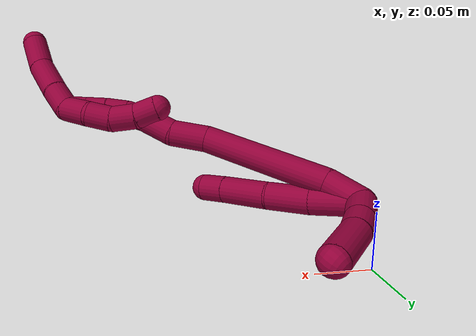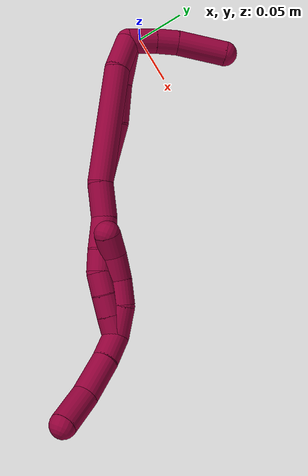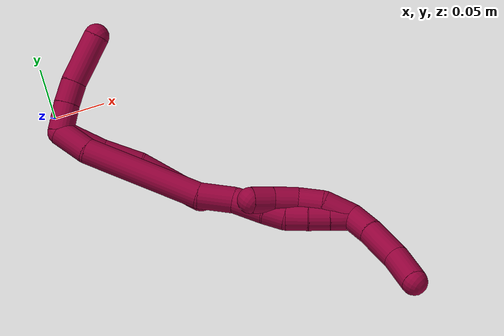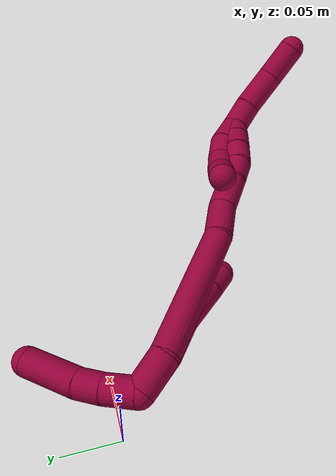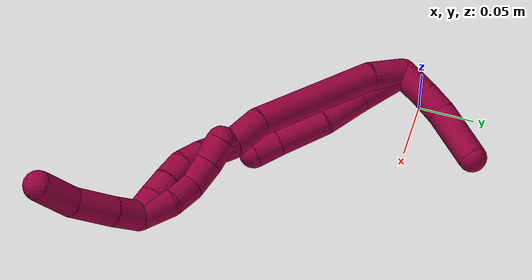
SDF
<sdf version="1.7">
 <world name="default">
  <model name="8">
   <static>0</static>
   <link name="8">
    <collision name="collision-cylinder-e_1_2_8">
     <pose>0.010074 -0.00645 0.01814 0.341648 0.48207 0.084758</pose>
     <geometry><cylinder><radius>0.0125</radius><length>0.043458</length></cylinder></geometry>
     <surface>
      <friction><ode><mu>1.16</mu><mu2>1.16</mu2><slip1>0</slip1><slip2>0</slip2></ode></friction>
      <contact><ode><kp>1e+06</kp><kd>1</kd><max_vel>0</max_vel><min_depth>0.001</min_depth></ode></contact>
     </surface>
    </collision>
    <visual name="visual-cylinder-e_1_2_8">
     <pose>0.010074 -0.00645 0.01814 0.341648 0.48207 0.084758</pose>
     <geometry><cylinder><radius>0.0125</radius><length>0.043458</length></cylinder></geometry>
     <material><ambient>0.584314 0 0.227451 1</ambient></material>
    </visual>
    <collision name="collision-cylinder-e_2_8_9">
     <pose>0.029605 -0.015478 0.053104 0.151988 0.507167 0.03946</pose>
     <geometry><cylinder><radius>0.0125</radius><length>0.038944</length></cylinder></geometry>
     <surface>
      <friction><ode><mu>1.16</mu><mu2>1.16</mu2><slip1>0</slip1><slip2>0</slip2></ode></friction>
      <contact><ode><kp>1e+06</kp><kd>1</kd><max_vel>0</max_vel><min_depth>0.001</min_depth></ode></contact>
     </surface>
    </collision>
    <visual name="visual-cylinder-e_2_8_9">
     <pose>0.029605 -0.015478 0.053104 0.151988 0.507167 0.03946</pose>
     <geometry><cylinder><radius>0.0125</radius><length>0.038944</length></cylinder></geometry>
     <material><ambient>0.584314 0 0.227451 1</ambient></material>
    </visual>
    <collision name="collision-cylinder-e_3_9_10">
     <pose>0.047313 -0.023992 0.089809 0.290206 0.378478 0.055962</pose>
     <geometry><cylinder><radius>0.0125</radius><length>0.044656</length></cylinder></geometry>
     <surface>
      <friction><ode><mu>1.16</mu><mu2>1.16</mu2><slip1>0</slip1><slip2>0</slip2></ode></friction>
      <contact><ode><kp>1e+06</kp><kd>1</kd><max_vel>0</max_vel><min_depth>0.001</min_depth></ode></contact>
     </surface>
    </collision>
    <visual name="visual-cylinder-e_3_9_10">
     <pose>0.047313 -0.023992 0.089809 0.290206 0.378478 0.055962</pose>
     <geometry><cylinder><radius>0.0125</radius><length>0.044656</length></cylinder></geometry>
     <material><ambient>0.584314 0 0.227451 1</ambient></material>
    </visual>
    <collision name="collision-cylinder-e_4_10_6">
     <pose>0.060193 -0.032917 0.119751 0.288716 0.415403 0.061251</pose>
     <geometry><cylinder><radius>0.0125</radius><length>0.022942</length></cylinder></geometry>
     <surface>
      <friction><ode><mu>1.16</mu><mu2>1.16</mu2><slip1>0</slip1><slip2>0</slip2></ode></friction>
      <contact><ode><kp>1e+06</kp><kd>1</kd><max_vel>0</max_vel><min_depth>0.001</min_depth></ode></contact>
     </surface>
    </collision>
    <visual name="visual-cylinder-e_4_10_6">
     <pose>0.060193 -0.032917 0.119751 0.288716 0.415403 0.061251</pose>
     <geometry><cylinder><radius>0.0125</radius><length>0.022942</length></cylinder></geometry>
     <material><ambient>0.584314 0 0.227451 1</ambient></material>
    </visual>
    <collision name="collision-cylinder-e_1_2_11">
     <pose>0.010156 0.007118 -0.006587 -2.3175 0.808495 -1.54939</pose>
     <geometry><cylinder><radius>0.0125</radius><length>0.028086</length></cylinder></geometry>
     <surface>
      <friction><ode><mu>1.16</mu><mu2>1.16</mu2><slip1>0</slip1><slip2>0</slip2></ode></friction>
      <contact><ode><kp>1e+06</kp><kd>1</kd><max_vel>0</max_vel><min_depth>0.001</min_depth></ode></contact>
     </surface>
    </collision>
    <visual name="visual-cylinder-e_1_2_11">
     <pose>0.010156 0.007118 -0.006587 -2.3175 0.808495 -1.54939</pose>
     <geometry><cylinder><radius>0.0125</radius><length>0.028086</length></cylinder></geometry>
     <material><ambient>0.584314 0 0.227451 1</ambient></material>
    </visual>
    <collision name="collision-cylinder-e_2_11_12">
     <pose>0.028713 0.020146 -0.017368 -2.18791 0.858903 -1.45059</pose>
     <geometry><cylinder><radius>0.0125</radius><length>0.02219</length></cylinder></geometry>
     <surface>
      <friction><ode><mu>1.16</mu><mu2>1.16</mu2><slip1>0</slip1><slip2>0</slip2></ode></friction>
      <contact><ode><kp>1e+06</kp><kd>1</kd><max_vel>0</max_vel><min_depth>0.001</min_depth></ode></contact>
     </surface>
    </collision>
    <visual name="visual-cylinder-e_2_11_12">
     <pose>0.028713 0.020146 -0.017368 -2.18791 0.858903 -1.45059</pose>
     <geometry><cylinder><radius>0.0125</radius><length>0.02219</length></cylinder></geometry>
     <material><ambient>0.584314 0 0.227451 1</ambient></material>
    </visual>
    <collision name="collision-cylinder-e_3_12_5">
     <pose>0.056971 0.039914 -0.027201 -1.95723 0.925147 -1.27576</pose>
     <geometry><cylinder><radius>0.0125</radius><length>0.049725</length></cylinder></geometry>
     <surface>
      <friction><ode><mu>1.16</mu><mu2>1.16</mu2><slip1>0</slip1><slip2>0</slip2></ode></friction>
      <contact><ode><kp>1e+06</kp><kd>1</kd><max_vel>0</max_vel><min_depth>0.001</min_depth></ode></contact>
     </surface>
    </collision>
    <visual name="visual-cylinder-e_3_12_5">
     <pose>0.056971 0.039914 -0.027201 -1.95723 0.925147 -1.27576</pose>
     <geometry><cylinder><radius>0.0125</radius><length>0.049725</length></cylinder></geometry>
     <material><ambient>0.584314 0 0.227451 1</ambient></material>
    </visual>
    <collision name="collision-cylinder-e_1_2_13">
     <pose>0.001447 -0.000238 0.016762 0.01418 0.086115 0.000611</pose>
     <geometry><cylinder><radius>0.0125</radius><length>0.033653</length></cylinder></geometry>
     <surface>
      <friction><ode><mu>1.16</mu><mu2>1.16</mu2><slip1>0</slip1><slip2>0</slip2></ode></friction>
      <contact><ode><kp>1e+06</kp><kd>1</kd><max_vel>0</max_vel><min_depth>0.001</min_depth></ode></contact>
     </surface>
    </collision>
    <visual name="visual-cylinder-e_1_2_13">
     <pose>0.001447 -0.000238 0.016762 0.01418 0.086115 0.000611</pose>
     <geometry><cylinder><radius>0.0125</radius><length>0.033653</length></cylinder></geometry>
     <material><ambient>0.584314 0 0.227451 1</ambient></material>
    </visual>
    <collision name="collision-cylinder-e_2_13_14">
     <pose>0.021406 0.001329 0.089291 -0.032342 0.320342 -0.005225</pose>
     <geometry><cylinder><radius>0.0125</radius><length>0.117571</length></cylinder></geometry>
     <surface>
      <friction><ode><mu>1.16</mu><mu2>1.16</mu2><slip1>0</slip1><slip2>0</slip2></ode></friction>
      <contact><ode><kp>1e+06</kp><kd>1</kd><max_vel>0</max_vel><min_depth>0.001</min_depth></ode></contact>
     </surface>
    </collision>
    <visual name="visual-cylinder-e_2_13_14">
     <pose>0.021406 0.001329 0.089291 -0.032342 0.320342 -0.005225</pose>
     <geometry><cylinder><radius>0.0125</radius><length>0.117571</length></cylinder></geometry>
     <material><ambient>0.584314 0 0.227451 1</ambient></material>
    </visual>
    <collision name="collision-cylinder-e_3_14_15">
     <pose>0.049266 0.005123 0.159543 -0.136492 0.568885 -0.039963</pose>
     <geometry><cylinder><radius>0.0125</radius><length>0.034712</length></cylinder></geometry>
     <surface>
      <friction><ode><mu>1.16</mu><mu2>1.16</mu2><slip1>0</slip1><slip2>0</slip2></ode></friction>
      <contact><ode><kp>1e+06</kp><kd>1</kd><max_vel>0</max_vel><min_depth>0.001</min_depth></ode></contact>
     </surface>
    </collision>
    <visual name="visual-cylinder-e_3_14_15">
     <pose>0.049266 0.005123 0.159543 -0.136492 0.568885 -0.039963</pose>
     <geometry><cylinder><radius>0.0125</radius><length>0.034712</length></cylinder></geometry>
     <material><ambient>0.584314 0 0.227451 1</ambient></material>
    </visual>
    <collision name="collision-cylinder-e_4_15_16">
     <pose>0.062703 0.009657 0.189407 -0.163968 0.256451 -0.021188</pose>
     <geometry><cylinder><radius>0.0125</radius><length>0.032229</length></cylinder></geometry>
     <surface>
      <friction><ode><mu>1.16</mu><mu2>1.16</mu2><slip1>0</slip1><slip2>0</slip2></ode></friction>
      <contact><ode><kp>1e+06</kp><kd>1</kd><max_vel>0</max_vel><min_depth>0.001</min_depth></ode></contact>
     </surface>
    </collision>
    <visual name="visual-cylinder-e_4_15_16">
     <pose>0.062703 0.009657 0.189407 -0.163968 0.256451 -0.021188</pose>
     <geometry><cylinder><radius>0.0125</radius><length>0.032229</length></cylinder></geometry>
     <material><ambient>0.584314 0 0.227451 1</ambient></material>
    </visual>
    <collision name="collision-cylinder-e_5_16_17">
     <pose>0.07064 0.013018 0.2141 -0.087529 0.390558 -0.017324</pose>
     <geometry><cylinder><radius>0.0125</radius><length>0.020224</length></cylinder></geometry>
     <surface>
      <friction><ode><mu>1.16</mu><mu2>1.16</mu2><slip1>0</slip1><slip2>0</slip2></ode></friction>
      <contact><ode><kp>1e+06</kp><kd>1</kd><max_vel>0</max_vel><min_depth>0.001</min_depth></ode></contact>
     </surface>
    </collision>
    <visual name="visual-cylinder-e_5_16_17">
     <pose>0.07064 0.013018 0.2141 -0.087529 0.390558 -0.017324</pose>
     <geometry><cylinder><radius>0.0125</radius><length>0.020224</length></cylinder></geometry>
     <material><ambient>0.584314 0 0.227451 1</ambient></material>
    </visual>
    <collision name="collision-cylinder-e_6_17_18">
     <pose>0.080979 0.01576 0.231536 -0.232639 0.66093 -0.080124</pose>
     <geometry><cylinder><radius>0.0125</radius><length>0.021144</length></cylinder></geometry>
     <surface>
      <friction><ode><mu>1.16</mu><mu2>1.16</mu2><slip1>0</slip1><slip2>0</slip2></ode></friction>
      <contact><ode><kp>1e+06</kp><kd>1</kd><max_vel>0</max_vel><min_depth>0.001</min_depth></ode></contact>
     </surface>
    </collision>
    <visual name="visual-cylinder-e_6_17_18">
     <pose>0.080979 0.01576 0.231536 -0.232639 0.66093 -0.080124</pose>
     <geometry><cylinder><radius>0.0125</radius><length>0.021144</length></cylinder></geometry>
     <material><ambient>0.584314 0 0.227451 1</ambient></material>
    </visual>
    <collision name="collision-cylinder-e_7_18_19">
     <pose>0.094091 0.018957 0.247048 -0.17059 0.723344 -0.064671</pose>
     <geometry><cylinder><radius>0.0125</radius><length>0.020011</length></cylinder></geometry>
     <surface>
      <friction><ode><mu>1.16</mu><mu2>1.16</mu2><slip1>0</slip1><slip2>0</slip2></ode></friction>
      <contact><ode><kp>1e+06</kp><kd>1</kd><max_vel>0</max_vel><min_depth>0.001</min_depth></ode></contact>
     </surface>
    </collision>
    <visual name="visual-cylinder-e_7_18_19">
     <pose>0.094091 0.018957 0.247048 -0.17059 0.723344 -0.064671</pose>
     <geometry><cylinder><radius>0.0125</radius><length>0.020011</length></cylinder></geometry>
     <material><ambient>0.584314 0 0.227451 1</ambient></material>
    </visual>
    <collision name="collision-cylinder-e_8_19_1">
     <pose>0.107645 0.021664 0.261823 -0.191817 0.744558 -0.075098</pose>
     <geometry><cylinder><radius>0.0125</radius><length>0.020457</length></cylinder></geometry>
     <surface>
      <friction><ode><mu>1.16</mu><mu2>1.16</mu2><slip1>0</slip1><slip2>0</slip2></ode></friction>
      <contact><ode><kp>1e+06</kp><kd>1</kd><max_vel>0</max_vel><min_depth>0.001</min_depth></ode></contact>
     </surface>
    </collision>
    <visual name="visual-cylinder-e_8_19_1">
     <pose>0.107645 0.021664 0.261823 -0.191817 0.744558 -0.075098</pose>
     <geometry><cylinder><radius>0.0125</radius><length>0.020457</length></cylinder></geometry>
     <material><ambient>0.584314 0 0.227451 1</ambient></material>
    </visual>
    <collision name="collision-cylinder-e_1_1_20">
     <pose>0.112463 0.02562 0.282104 -0.193072 -0.1595 0.015478</pose>
     <geometry><cylinder><radius>0.0125</radius><length>0.02662</length></cylinder></geometry>
     <surface>
      <friction><ode><mu>1.16</mu><mu2>1.16</mu2><slip1>0</slip1><slip2>0</slip2></ode></friction>
      <contact><ode><kp>1e+06</kp><kd>1</kd><max_vel>0</max_vel><min_depth>0.001</min_depth></ode></contact>
     </surface>
    </collision>
    <visual name="visual-cylinder-e_1_1_20">
     <pose>0.112463 0.02562 0.282104 -0.193072 -0.1595 0.015478</pose>
     <geometry><cylinder><radius>0.0125</radius><length>0.02662</length></cylinder></geometry>
     <material><ambient>0.584314 0 0.227451 1</ambient></material>
    </visual>
    <collision name="collision-cylinder-e_2_20_21">
     <pose>0.106113 0.030254 0.313518 -0.113581 -0.223442 0.012756</pose>
     <geometry><cylinder><radius>0.0125</radius><length>0.038226</length></cylinder></geometry>
     <surface>
      <friction><ode><mu>1.16</mu><mu2>1.16</mu2><slip1>0</slip1><slip2>0</slip2></ode></friction>
      <contact><ode><kp>1e+06</kp><kd>1</kd><max_vel>0</max_vel><min_depth>0.001</min_depth></ode></contact>
     </surface>
    </collision>
    <visual name="visual-cylinder-e_2_20_21">
     <pose>0.106113 0.030254 0.313518 -0.113581 -0.223442 0.012756</pose>
     <geometry><cylinder><radius>0.0125</radius><length>0.038226</length></cylinder></geometry>
     <material><ambient>0.584314 0 0.227451 1</ambient></material>
    </visual>
    <collision name="collision-cylinder-e_3_21_4">
     <pose>0.094994 0.035791 0.347842 -0.213413 -0.40245 0.043692</pose>
     <geometry><cylinder><radius>0.0125</radius><length>0.035154</length></cylinder></geometry>
     <surface>
      <friction><ode><mu>1.16</mu><mu2>1.16</mu2><slip1>0</slip1><slip2>0</slip2></ode></friction>
      <contact><ode><kp>1e+06</kp><kd>1</kd><max_vel>0</max_vel><min_depth>0.001</min_depth></ode></contact>
     </surface>
    </collision>
    <visual name="visual-cylinder-e_3_21_4">
     <pose>0.094994 0.035791 0.347842 -0.213413 -0.40245 0.043692</pose>
     <geometry><cylinder><radius>0.0125</radius><length>0.035154</length></cylinder></geometry>
     <material><ambient>0.584314 0 0.227451 1</ambient></material>
    </visual>
    <collision name="collision-cylinder-e_1_1_22">
     <pose>0.109573 0.024584 0.255664 -3.03233 -0.351943 2.54487</pose>
     <geometry><cylinder><radius>0.0125</radius><length>0.029028</length></cylinder></geometry>
     <surface>
      <friction><ode><mu>1.16</mu><mu2>1.16</mu2><slip1>0</slip1><slip2>0</slip2></ode></friction>
      <contact><ode><kp>1e+06</kp><kd>1</kd><max_vel>0</max_vel><min_depth>0.001</min_depth></ode></contact>
     </surface>
    </collision>
    <visual name="visual-cylinder-e_1_1_22">
     <pose>0.109573 0.024584 0.255664 -3.03233 -0.351943 2.54487</pose>
     <geometry><cylinder><radius>0.0125</radius><length>0.029028</length></cylinder></geometry>
     <material><ambient>0.584314 0 0.227451 1</ambient></material>
    </visual>
    <collision name="collision-cylinder-e_2_22_23">
     <pose>0.098317 0.024202 0.231847 2.96174 -0.539507 -2.51112</pose>
     <geometry><cylinder><radius>0.0125</radius><length>0.024343</length></cylinder></geometry>
     <surface>
      <friction><ode><mu>1.16</mu><mu2>1.16</mu2><slip1>0</slip1><slip2>0</slip2></ode></friction>
      <contact><ode><kp>1e+06</kp><kd>1</kd><max_vel>0</max_vel><min_depth>0.001</min_depth></ode></contact>
     </surface>
    </collision>
    <visual name="visual-cylinder-e_2_22_23">
     <pose>0.098317 0.024202 0.231847 2.96174 -0.539507 -2.51112</pose>
     <geometry><cylinder><radius>0.0125</radius><length>0.024343</length></cylinder></geometry>
     <material><ambient>0.584314 0 0.227451 1</ambient></material>
    </visual>
    <collision name="collision-cylinder-e_3_23_24">
     <pose>0.083023 0.02275 0.213135 -3.09227 -0.819346 3.02812</pose>
     <geometry><cylinder><radius>0.0125</radius><length>0.024747</length></cylinder></geometry>
     <surface>
      <friction><ode><mu>1.16</mu><mu2>1.16</mu2><slip1>0</slip1><slip2>0</slip2></ode></friction>
      <contact><ode><kp>1e+06</kp><kd>1</kd><max_vel>0</max_vel><min_depth>0.001</min_depth></ode></contact>
     </surface>
    </collision>
    <visual name="visual-cylinder-e_3_23_24">
     <pose>0.083023 0.02275 0.213135 -3.09227 -0.819346 3.02812</pose>
     <geometry><cylinder><radius>0.0125</radius><length>0.024747</length></cylinder></geometry>
     <material><ambient>0.584314 0 0.227451 1</ambient></material>
    </visual>
    <collision name="collision-cylinder-e_4_24_3">
     <pose>0.064882 0.025086 0.198936 -2.82007 -0.982257 2.55283</pose>
     <geometry><cylinder><radius>0.0125</radius><length>0.021882</length></cylinder></geometry>
     <surface>
      <friction><ode><mu>1.16</mu><mu2>1.16</mu2><slip1>0</slip1><slip2>0</slip2></ode></friction>
      <contact><ode><kp>1e+06</kp><kd>1</kd><max_vel>0</max_vel><min_depth>0.001</min_depth></ode></contact>
     </surface>
    </collision>
    <visual name="visual-cylinder-e_4_24_3">
     <pose>0.064882 0.025086 0.198936 -2.82007 -0.982257 2.55283</pose>
     <geometry><cylinder><radius>0.0125</radius><length>0.021882</length></cylinder></geometry>
     <material><ambient>0.584314 0 0.227451 1</ambient></material>
    </visual>
    <collision name="collision-sphere-3">
     <pose>0.055782 0.027005 0.193173 0 -0 0</pose>
     <geometry><sphere><radius>0.0125</radius></sphere></geometry>
     <surface>
      <friction><ode><mu>1.16</mu><mu2>1.16</mu2><slip1>0</slip1><slip2>0</slip2></ode></friction>
      <contact><ode><kp>1e+06</kp><kd>1</kd><max_vel>0</max_vel><min_depth>0.001</min_depth></ode></contact>
     </surface>
    </collision>
    <visual name="visual-sphere-3">
     <pose>0.055782 0.027005 0.193173 0 -0 0</pose>
     <geometry><sphere><radius>0.0125</radius></sphere></geometry>
     <material><ambient>0.584314 0 0.227451 1</ambient></material>
    </visual>
    <collision name="collision-sphere-24">
     <pose>0.073982 0.023167 0.204698 0 -0 0</pose>
     <geometry><sphere><radius>0.0125</radius></sphere></geometry>
     <surface>
      <friction><ode><mu>1.16</mu><mu2>1.16</mu2><slip1>0</slip1><slip2>0</slip2></ode></friction>
      <contact><ode><kp>1e+06</kp><kd>1</kd><max_vel>0</max_vel><min_depth>0.001</min_depth></ode></contact>
     </surface>
    </collision>
    <visual name="visual-sphere-24">
     <pose>0.073982 0.023167 0.204698 0 -0 0</pose>
     <geometry><sphere><radius>0.0125</radius></sphere></geometry>
     <material><ambient>0.584314 0 0.227451 1</ambient></material>
    </visual>
    <collision name="collision-sphere-23">
     <pose>0.092065 0.022334 0.221573 0 -0 0</pose>
     <geometry><sphere><radius>0.0125</radius></sphere></geometry>
     <surface>
      <friction><ode><mu>1.16</mu><mu2>1.16</mu2><slip1>0</slip1><slip2>0</slip2></ode></friction>
      <contact><ode><kp>1e+06</kp><kd>1</kd><max_vel>0</max_vel><min_depth>0.001</min_depth></ode></contact>
     </surface>
    </collision>
    <visual name="visual-sphere-23">
     <pose>0.092065 0.022334 0.221573 0 -0 0</pose>
     <geometry><sphere><radius>0.0125</radius></sphere></geometry>
     <material><ambient>0.584314 0 0.227451 1</ambient></material>
    </visual>
    <collision name="collision-sphere-22">
     <pose>0.10457 0.02607 0.242121 0 -0 0</pose>
     <geometry><sphere><radius>0.0125</radius></sphere></geometry>
     <surface>
      <friction><ode><mu>1.16</mu><mu2>1.16</mu2><slip1>0</slip1><slip2>0</slip2></ode></friction>
      <contact><ode><kp>1e+06</kp><kd>1</kd><max_vel>0</max_vel><min_depth>0.001</min_depth></ode></contact>
     </surface>
    </collision>
    <visual name="visual-sphere-22">
     <pose>0.10457 0.02607 0.242121 0 -0 0</pose>
     <geometry><sphere><radius>0.0125</radius></sphere></geometry>
     <material><ambient>0.584314 0 0.227451 1</ambient></material>
    </visual>
    <collision name="collision-sphere-4">
     <pose>0.088109 0.039217 0.363648 0 -0 0</pose>
     <geometry><sphere><radius>0.0125</radius></sphere></geometry>
     <surface>
      <friction><ode><mu>1.16</mu><mu2>1.16</mu2><slip1>0</slip1><slip2>0</slip2></ode></friction>
      <contact><ode><kp>1e+06</kp><kd>1</kd><max_vel>0</max_vel><min_depth>0.001</min_depth></ode></contact>
     </surface>
    </collision>
    <visual name="visual-sphere-4">
     <pose>0.088109 0.039217 0.363648 0 -0 0</pose>
     <geometry><sphere><radius>0.0125</radius></sphere></geometry>
     <material><ambient>0.584314 0 0.227451 1</ambient></material>
    </visual>
    <collision name="collision-sphere-21">
     <pose>0.101878 0.032366 0.332036 0 -0 0</pose>
     <geometry><sphere><radius>0.0125</radius></sphere></geometry>
     <surface>
      <friction><ode><mu>1.16</mu><mu2>1.16</mu2><slip1>0</slip1><slip2>0</slip2></ode></friction>
      <contact><ode><kp>1e+06</kp><kd>1</kd><max_vel>0</max_vel><min_depth>0.001</min_depth></ode></contact>
     </surface>
    </collision>
    <visual name="visual-sphere-21">
     <pose>0.101878 0.032366 0.332036 0 -0 0</pose>
     <geometry><sphere><radius>0.0125</radius></sphere></geometry>
     <material><ambient>0.584314 0 0.227451 1</ambient></material>
    </visual>
    <collision name="collision-sphere-20">
     <pose>0.110349 0.028141 0.295001 0 -0 0</pose>
     <geometry><sphere><radius>0.0125</radius></sphere></geometry>
     <surface>
      <friction><ode><mu>1.16</mu><mu2>1.16</mu2><slip1>0</slip1><slip2>0</slip2></ode></friction>
      <contact><ode><kp>1e+06</kp><kd>1</kd><max_vel>0</max_vel><min_depth>0.001</min_depth></ode></contact>
     </surface>
    </collision>
    <visual name="visual-sphere-20">
     <pose>0.110349 0.028141 0.295001 0 -0 0</pose>
     <geometry><sphere><radius>0.0125</radius></sphere></geometry>
     <material><ambient>0.584314 0 0.227451 1</ambient></material>
    </visual>
    <collision name="collision-sphere-11">
     <pose>0.020313 0.014235 -0.013174 0 -0 0</pose>
     <geometry><sphere><radius>0.0125</radius></sphere></geometry>
     <surface>
      <friction><ode><mu>1.16</mu><mu2>1.16</mu2><slip1>0</slip1><slip2>0</slip2></ode></friction>
      <contact><ode><kp>1e+06</kp><kd>1</kd><max_vel>0</max_vel><min_depth>0.001</min_depth></ode></contact>
     </surface>
    </collision>
    <visual name="visual-sphere-11">
     <pose>0.020313 0.014235 -0.013174 0 -0 0</pose>
     <geometry><sphere><radius>0.0125</radius></sphere></geometry>
     <material><ambient>0.584314 0 0.227451 1</ambient></material>
    </visual>
    <collision name="collision-sphere-6">
     <pose>0.064822 -0.035905 0.129812 0 -0 0</pose>
     <geometry><sphere><radius>0.0125</radius></sphere></geometry>
     <surface>
      <friction><ode><mu>1.16</mu><mu2>1.16</mu2><slip1>0</slip1><slip2>0</slip2></ode></friction>
      <contact><ode><kp>1e+06</kp><kd>1</kd><max_vel>0</max_vel><min_depth>0.001</min_depth></ode></contact>
     </surface>
    </collision>
    <visual name="visual-sphere-6">
     <pose>0.064822 -0.035905 0.129812 0 -0 0</pose>
     <geometry><sphere><radius>0.0125</radius></sphere></geometry>
     <material><ambient>0.584314 0 0.227451 1</ambient></material>
    </visual>
    <collision name="collision-sphere-10">
     <pose>0.055564 -0.029929 0.10969 0 -0 0</pose>
     <geometry><sphere><radius>0.0125</radius></sphere></geometry>
     <surface>
      <friction><ode><mu>1.16</mu><mu2>1.16</mu2><slip1>0</slip1><slip2>0</slip2></ode></friction>
      <contact><ode><kp>1e+06</kp><kd>1</kd><max_vel>0</max_vel><min_depth>0.001</min_depth></ode></contact>
     </surface>
    </collision>
    <visual name="visual-sphere-10">
     <pose>0.055564 -0.029929 0.10969 0 -0 0</pose>
     <geometry><sphere><radius>0.0125</radius></sphere></geometry>
     <material><ambient>0.584314 0 0.227451 1</ambient></material>
    </visual>
    <collision name="collision-sphere-9">
     <pose>0.039063 -0.018055 0.069929 0 -0 0</pose>
     <geometry><sphere><radius>0.0125</radius></sphere></geometry>
     <surface>
      <friction><ode><mu>1.16</mu><mu2>1.16</mu2><slip1>0</slip1><slip2>0</slip2></ode></friction>
      <contact><ode><kp>1e+06</kp><kd>1</kd><max_vel>0</max_vel><min_depth>0.001</min_depth></ode></contact>
     </surface>
    </collision>
    <visual name="visual-sphere-9">
     <pose>0.039063 -0.018055 0.069929 0 -0 0</pose>
     <geometry><sphere><radius>0.0125</radius></sphere></geometry>
     <material><ambient>0.584314 0 0.227451 1</ambient></material>
    </visual>
    <collision name="collision-sphere-2">
     <geometry><sphere><radius>0.0125</radius></sphere></geometry>
     <surface>
      <friction><ode><mu>1.16</mu><mu2>1.16</mu2><slip1>0</slip1><slip2>0</slip2></ode></friction>
      <contact><ode><kp>1e+06</kp><kd>1</kd><max_vel>0</max_vel><min_depth>0.001</min_depth></ode></contact>
     </surface>
    </collision>
    <visual name="visual-sphere-2">
     <geometry><sphere><radius>0.0125</radius></sphere></geometry>
     <material><ambient>0.584314 0 0.227451 1</ambient></material>
    </visual>
    <collision name="collision-sphere-19">
     <pose>0.100714 0.02023 0.254439 0 -0 0</pose>
     <geometry><sphere><radius>0.0125</radius></sphere></geometry>
     <surface>
      <friction><ode><mu>1.16</mu><mu2>1.16</mu2><slip1>0</slip1><slip2>0</slip2></ode></friction>
      <contact><ode><kp>1e+06</kp><kd>1</kd><max_vel>0</max_vel><min_depth>0.001</min_depth></ode></contact>
     </surface>
    </collision>
    <visual name="visual-sphere-19">
     <pose>0.100714 0.02023 0.254439 0 -0 0</pose>
     <geometry><sphere><radius>0.0125</radius></sphere></geometry>
     <material><ambient>0.584314 0 0.227451 1</ambient></material>
    </visual>
    <collision name="collision-sphere-8">
     <pose>0.020148 -0.012901 0.03628 0 -0 0</pose>
     <geometry><sphere><radius>0.0125</radius></sphere></geometry>
     <surface>
      <friction><ode><mu>1.16</mu><mu2>1.16</mu2><slip1>0</slip1><slip2>0</slip2></ode></friction>
      <contact><ode><kp>1e+06</kp><kd>1</kd><max_vel>0</max_vel><min_depth>0.001</min_depth></ode></contact>
     </surface>
    </collision>
    <visual name="visual-sphere-8">
     <pose>0.020148 -0.012901 0.03628 0 -0 0</pose>
     <geometry><sphere><radius>0.0125</radius></sphere></geometry>
     <material><ambient>0.584314 0 0.227451 1</ambient></material>
    </visual>
    <collision name="collision-sphere-12">
     <pose>0.037113 0.026057 -0.021562 0 -0 0</pose>
     <geometry><sphere><radius>0.0125</radius></sphere></geometry>
     <surface>
      <friction><ode><mu>1.16</mu><mu2>1.16</mu2><slip1>0</slip1><slip2>0</slip2></ode></friction>
      <contact><ode><kp>1e+06</kp><kd>1</kd><max_vel>0</max_vel><min_depth>0.001</min_depth></ode></contact>
     </surface>
    </collision>
    <visual name="visual-sphere-12">
     <pose>0.037113 0.026057 -0.021562 0 -0 0</pose>
     <geometry><sphere><radius>0.0125</radius></sphere></geometry>
     <material><ambient>0.584314 0 0.227451 1</ambient></material>
    </visual>
    <collision name="collision-sphere-5">
     <pose>0.076829 0.053771 -0.032839 0 -0 0</pose>
     <geometry><sphere><radius>0.0125</radius></sphere></geometry>
     <surface>
      <friction><ode><mu>1.16</mu><mu2>1.16</mu2><slip1>0</slip1><slip2>0</slip2></ode></friction>
      <contact><ode><kp>1e+06</kp><kd>1</kd><max_vel>0</max_vel><min_depth>0.001</min_depth></ode></contact>
     </surface>
    </collision>
    <visual name="visual-sphere-5">
     <pose>0.076829 0.053771 -0.032839 0 -0 0</pose>
     <geometry><sphere><radius>0.0125</radius></sphere></geometry>
     <material><ambient>0.584314 0 0.227451 1</ambient></material>
    </visual>
    <collision name="collision-sphere-13">
     <pose>0.002894 -0.000475 0.033525 0 -0 0</pose>
     <geometry><sphere><radius>0.0125</radius></sphere></geometry>
     <surface>
      <friction><ode><mu>1.16</mu><mu2>1.16</mu2><slip1>0</slip1><slip2>0</slip2></ode></friction>
      <contact><ode><kp>1e+06</kp><kd>1</kd><max_vel>0</max_vel><min_depth>0.001</min_depth></ode></contact>
     </surface>
    </collision>
    <visual name="visual-sphere-13">
     <pose>0.002894 -0.000475 0.033525 0 -0 0</pose>
     <geometry><sphere><radius>0.0125</radius></sphere></geometry>
     <material><ambient>0.584314 0 0.227451 1</ambient></material>
    </visual>
    <collision name="collision-sphere-14">
     <pose>0.039917 0.003133 0.145057 0 -0 0</pose>
     <geometry><sphere><radius>0.0125</radius></sphere></geometry>
     <surface>
      <friction><ode><mu>1.16</mu><mu2>1.16</mu2><slip1>0</slip1><slip2>0</slip2></ode></friction>
      <contact><ode><kp>1e+06</kp><kd>1</kd><max_vel>0</max_vel><min_depth>0.001</min_depth></ode></contact>
     </surface>
    </collision>
    <visual name="visual-sphere-14">
     <pose>0.039917 0.003133 0.145057 0 -0 0</pose>
     <geometry><sphere><radius>0.0125</radius></sphere></geometry>
     <material><ambient>0.584314 0 0.227451 1</ambient></material>
    </visual>
    <collision name="collision-sphere-15">
     <pose>0.058615 0.007112 0.174029 0 -0 0</pose>
     <geometry><sphere><radius>0.0125</radius></sphere></geometry>
     <surface>
      <friction><ode><mu>1.16</mu><mu2>1.16</mu2><slip1>0</slip1><slip2>0</slip2></ode></friction>
      <contact><ode><kp>1e+06</kp><kd>1</kd><max_vel>0</max_vel><min_depth>0.001</min_depth></ode></contact>
     </surface>
    </collision>
    <visual name="visual-sphere-15">
     <pose>0.058615 0.007112 0.174029 0 -0 0</pose>
     <geometry><sphere><radius>0.0125</radius></sphere></geometry>
     <material><ambient>0.584314 0 0.227451 1</ambient></material>
    </visual>
    <collision name="collision-sphere-16">
     <pose>0.06679 0.012201 0.204786 0 -0 0</pose>
     <geometry><sphere><radius>0.0125</radius></sphere></geometry>
     <surface>
      <friction><ode><mu>1.16</mu><mu2>1.16</mu2><slip1>0</slip1><slip2>0</slip2></ode></friction>
      <contact><ode><kp>1e+06</kp><kd>1</kd><max_vel>0</max_vel><min_depth>0.001</min_depth></ode></contact>
     </surface>
    </collision>
    <visual name="visual-sphere-16">
     <pose>0.06679 0.012201 0.204786 0 -0 0</pose>
     <geometry><sphere><radius>0.0125</radius></sphere></geometry>
     <material><ambient>0.584314 0 0.227451 1</ambient></material>
    </visual>
    <collision name="collision-sphere-17">
     <pose>0.07449 0.013836 0.223415 0 -0 0</pose>
     <geometry><sphere><radius>0.0125</radius></sphere></geometry>
     <surface>
      <friction><ode><mu>1.16</mu><mu2>1.16</mu2><slip1>0</slip1><slip2>0</slip2></ode></friction>
      <contact><ode><kp>1e+06</kp><kd>1</kd><max_vel>0</max_vel><min_depth>0.001</min_depth></ode></contact>
     </surface>
    </collision>
    <visual name="visual-sphere-17">
     <pose>0.07449 0.013836 0.223415 0 -0 0</pose>
     <geometry><sphere><radius>0.0125</radius></sphere></geometry>
     <material><ambient>0.584314 0 0.227451 1</ambient></material>
    </visual>
    <collision name="collision-sphere-18">
     <pose>0.087469 0.017684 0.239657 0 -0 0</pose>
     <geometry><sphere><radius>0.0125</radius></sphere></geometry>
     <surface>
      <friction><ode><mu>1.16</mu><mu2>1.16</mu2><slip1>0</slip1><slip2>0</slip2></ode></friction>
      <contact><ode><kp>1e+06</kp><kd>1</kd><max_vel>0</max_vel><min_depth>0.001</min_depth></ode></contact>
     </surface>
    </collision>
    <visual name="visual-sphere-18">
     <pose>0.087469 0.017684 0.239657 0 -0 0</pose>
     <geometry><sphere><radius>0.0125</radius></sphere></geometry>
     <material><ambient>0.584314 0 0.227451 1</ambient></material>
    </visual>
    <collision name="collision-sphere-1">
     <pose>0.114576 0.023098 0.269207 0 -0 0</pose>
     <geometry><sphere><radius>0.0125</radius></sphere></geometry>
     <surface>
      <friction><ode><mu>1.16</mu><mu2>1.16</mu2><slip1>0</slip1><slip2>0</slip2></ode></friction>
      <contact><ode><kp>1e+06</kp><kd>1</kd><max_vel>0</max_vel><min_depth>0.001</min_depth></ode></contact>
     </surface>
    </collision>
    <visual name="visual-sphere-1">
     <pose>0.114576 0.023098 0.269207 0 -0 0</pose>
     <geometry><sphere><radius>0.0125</radius></sphere></geometry>
     <material><ambient>0.584314 0 0.227451 1</ambient></material>
    </visual>
    <inertial>
     <pose>0.055733 0.009986 0.139115 0 -0 0</pose>
     <mass>0.75</mass>
     <inertia>
      <ixx>0.000188</ixx>
      <ixy>0</ixy>
      <ixz>0</ixz>
      <iyy>0.000212</iyy>
      <iyz>0</iyz>
      <izz>-4.9e-05</izz>
     </inertia>
    </inertial>
   </link>
   <pose>0.00483 -0.016032 0.053297 1.10595 0.557042 0.350203</pose>
  </model>
 </world>
</sdf>
